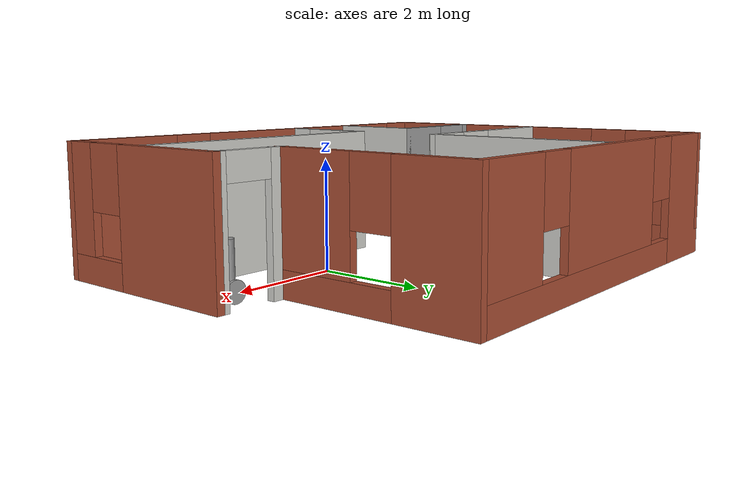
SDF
<?xml version='1.0'?>
<sdf version='1.7'>
  <model name='PROJECT1'>
    <model name='PROJECT1'>
      <model name='balancerobot'>
        <link name='link_0'>
          <inertial>
            <mass>1</mass>
            <inertia>
              <ixx>0.145833</ixx>
              <ixy>0</ixy>
              <ixz>0</ixz>
              <iyy>0.145833</iyy>
              <iyz>0</iyz>
              <izz>0.125</izz>
            </inertia>
            <pose>0 0 0 0 -0 0</pose>
          </inertial>
          <pose>0.020222 -0.037562 -0.115563 0 -0 0</pose>
          <gravity>1</gravity>
          <self_collide>0</self_collide>
          <kinematic>0</kinematic>
          <enable_wind>0</enable_wind>
          <visual name='visual'>
            <pose>0 0 0 0 -0 0</pose>
            <geometry>
              <cylinder>
                <radius>0.2</radius>
                <length>0.01</length>
              </cylinder>
            </geometry>
            <material>
              <lighting>1</lighting>
              <script>
                <uri>file://media/materials/scripts/gazebo.material</uri>
                <name>Gazebo/Grey</name>
              </script>
              <shader type='vertex'>
                <normal_map>__default__</normal_map>
              </shader>
              <ambient>0.3 0.3 0.3 1</ambient>
              <diffuse>0.7 0.7 0.7 1</diffuse>
              <specular>0.01 0.01 0.01 1</specular>
              <emissive>0 0 0 1</emissive>
            </material>
            <transparency>0</transparency>
            <cast_shadows>1</cast_shadows>
          </visual>
          <collision name='collision'>
            <laser_retro>0</laser_retro>
            <max_contacts>10</max_contacts>
            <pose>0 0 0 0 -0 0</pose>
            <geometry>
              <cylinder>
                <radius>0.2</radius>
                <length>0.01</length>
              </cylinder>
            </geometry>
            <surface>
              <friction>
                <ode>
                  <mu>1</mu>
                  <mu2>1</mu2>
                  <fdir1>0 0 0</fdir1>
                  <slip1>0</slip1>
                  <slip2>0</slip2>
                </ode>
                <torsional>
                  <coefficient>1</coefficient>
                  <patch_radius>0</patch_radius>
                  <surface_radius>0</surface_radius>
                  <use_patch_radius>1</use_patch_radius>
                  <ode>
                    <slip>0</slip>
                  </ode>
                </torsional>
              </friction>
              <bounce>
                <restitution_coefficient>0</restitution_coefficient>
                <threshold>1e+06</threshold>
              </bounce>
              <contact>
                <collide_without_contact>0</collide_without_contact>
                <collide_without_contact_bitmask>1</collide_without_contact_bitmask>
                <collide_bitmask>1</collide_bitmask>
                <ode>
                  <soft_cfm>0</soft_cfm>
                  <soft_erp>0.2</soft_erp>
                  <kp>1e+13</kp>
                  <kd>1</kd>
                  <max_vel>0.01</max_vel>
                  <min_depth>0</min_depth>
                </ode>
                <bullet>
                  <split_impulse>1</split_impulse>
                  <split_impulse_penetration_threshold>-0.01</split_impulse_penetration_threshold>
                  <soft_cfm>0</soft_cfm>
                  <soft_erp>0.2</soft_erp>
                  <kp>1e+13</kp>
                  <kd>1</kd>
                </bullet>
              </contact>
            </surface>
          </collision>
        </link>
        <link name='link_1'>
          <inertial>
            <mass>1</mass>
            <inertia>
              <ixx>0.145833</ixx>
              <ixy>0</ixy>
              <ixz>0</ixz>
              <iyy>0.145833</iyy>
              <iyz>0</iyz>
              <izz>0.125</izz>
            </inertia>
            <pose>0 0 0 0 -0 0</pose>
          </inertial>
          <pose>0.020222 -0.187562 -0.165183 1.5707 -0 0</pose>
          <gravity>1</gravity>
          <self_collide>0</self_collide>
          <kinematic>0</kinematic>
          <enable_wind>0</enable_wind>
          <visual name='visual'>
            <pose>0 0 0 0 -0 0</pose>
            <geometry>
              <cylinder>
                <radius>0.045</radius>
                <length>0.11</length>
              </cylinder>
            </geometry>
            <material>
              <lighting>1</lighting>
              <script>
                <uri>file://media/materials/scripts/gazebo.material</uri>
                <name>Gazebo/Grey</name>
              </script>
              <shader type='vertex'>
                <normal_map>__default__</normal_map>
              </shader>
              <ambient>0.3 0.3 0.3 1</ambient>
              <diffuse>0.7 0.7 0.7 1</diffuse>
              <specular>0.01 0.01 0.01 1</specular>
              <emissive>0 0 0 1</emissive>
            </material>
            <transparency>0</transparency>
            <cast_shadows>1</cast_shadows>
          </visual>
          <collision name='collision'>
            <laser_retro>0</laser_retro>
            <max_contacts>10</max_contacts>
            <pose>0 0 0 0 -0 0</pose>
            <geometry>
              <cylinder>
                <radius>0.045</radius>
                <length>0.11</length>
              </cylinder>
            </geometry>
            <surface>
              <friction>
                <ode>
                  <mu>1</mu>
                  <mu2>1</mu2>
                  <fdir1>0 0 0</fdir1>
                  <slip1>0</slip1>
                  <slip2>0</slip2>
                </ode>
                <torsional>
                  <coefficient>1</coefficient>
                  <patch_radius>0</patch_radius>
                  <surface_radius>0</surface_radius>
                  <use_patch_radius>1</use_patch_radius>
                  <ode>
                    <slip>0</slip>
                  </ode>
                </torsional>
              </friction>
              <bounce>
                <restitution_coefficient>0</restitution_coefficient>
                <threshold>1e+06</threshold>
              </bounce>
              <contact>
                <collide_without_contact>0</collide_without_contact>
                <collide_without_contact_bitmask>1</collide_without_contact_bitmask>
                <collide_bitmask>1</collide_bitmask>
                <ode>
                  <soft_cfm>0</soft_cfm>
                  <soft_erp>0.2</soft_erp>
                  <kp>1e+13</kp>
                  <kd>1</kd>
                  <max_vel>0.01</max_vel>
                  <min_depth>0</min_depth>
                </ode>
                <bullet>
                  <split_impulse>1</split_impulse>
                  <split_impulse_penetration_threshold>-0.01</split_impulse_penetration_threshold>
                  <soft_cfm>0</soft_cfm>
                  <soft_erp>0.2</soft_erp>
                  <kp>1e+13</kp>
                  <kd>1</kd>
                </bullet>
              </contact>
            </surface>
          </collision>
        </link>
        <link name='link_1_clone'>
          <inertial>
            <mass>1</mass>
            <inertia>
              <ixx>0.145833</ixx>
              <ixy>0</ixy>
              <ixz>0</ixz>
              <iyy>0.145833</iyy>
              <iyz>0</iyz>
              <izz>0.125</izz>
            </inertia>
            <pose>0 0 0 0 -0 0</pose>
          </inertial>
          <pose>0.020222 0.112438 -0.165563 1.5707 -0 0</pose>
          <gravity>1</gravity>
          <self_collide>0</self_collide>
          <kinematic>0</kinematic>
          <enable_wind>0</enable_wind>
          <visual name='visual'>
            <pose>0 0 0 0 -0 0</pose>
            <geometry>
              <cylinder>
                <radius>0.045</radius>
                <length>0.11</length>
              </cylinder>
            </geometry>
            <material>
              <lighting>1</lighting>
              <script>
                <uri>file://media/materials/scripts/gazebo.material</uri>
                <name>Gazebo/Grey</name>
              </script>
              <shader type='vertex'>
                <normal_map>__default__</normal_map>
              </shader>
              <ambient>0.3 0.3 0.3 1</ambient>
              <diffuse>0.7 0.7 0.7 1</diffuse>
              <specular>0.01 0.01 0.01 1</specular>
              <emissive>0 0 0 1</emissive>
            </material>
            <transparency>0</transparency>
            <cast_shadows>1</cast_shadows>
          </visual>
          <collision name='collision'>
            <laser_retro>0</laser_retro>
            <max_contacts>10</max_contacts>
            <pose>0 0 0 0 -0 0</pose>
            <geometry>
              <cylinder>
                <radius>0.045</radius>
                <length>0.11</length>
              </cylinder>
            </geometry>
            <surface>
              <friction>
                <ode>
                  <mu>1</mu>
                  <mu2>1</mu2>
                  <fdir1>0 0 0</fdir1>
                  <slip1>0</slip1>
                  <slip2>0</slip2>
                </ode>
                <torsional>
                  <coefficient>1</coefficient>
                  <patch_radius>0</patch_radius>
                  <surface_radius>0</surface_radius>
                  <use_patch_radius>1</use_patch_radius>
                  <ode>
                    <slip>0</slip>
                  </ode>
                </torsional>
              </friction>
              <bounce>
                <restitution_coefficient>0</restitution_coefficient>
                <threshold>1e+06</threshold>
              </bounce>
              <contact>
                <collide_without_contact>0</collide_without_contact>
                <collide_without_contact_bitmask>1</collide_without_contact_bitmask>
                <collide_bitmask>1</collide_bitmask>
                <ode>
                  <soft_cfm>0</soft_cfm>
                  <soft_erp>0.2</soft_erp>
                  <kp>1e+13</kp>
                  <kd>1</kd>
                  <max_vel>0.01</max_vel>
                  <min_depth>0</min_depth>
                </ode>
                <bullet>
                  <split_impulse>1</split_impulse>
                  <split_impulse_penetration_threshold>-0.01</split_impulse_penetration_threshold>
                  <soft_cfm>0</soft_cfm>
                  <soft_erp>0.2</soft_erp>
                  <kp>1e+13</kp>
                  <kd>1</kd>
                </bullet>
              </contact>
            </surface>
          </collision>
        </link>
        <link name='link_2'>
          <inertial>
            <mass>1</mass>
            <inertia>
              <ixx>0.145833</ixx>
              <ixy>0</ixy>
              <ixz>0</ixz>
              <iyy>0.145833</iyy>
              <iyz>0</iyz>
              <izz>0.125</izz>
            </inertia>
            <pose>0 0 0 0 -0 0</pose>
          </inertial>
          <pose>0.020222 -0.267562 -0.165175 1.5707 -0 0</pose>
          <gravity>1</gravity>
          <self_collide>0</self_collide>
          <kinematic>0</kinematic>
          <enable_wind>0</enable_wind>
          <visual name='visual'>
            <pose>0 0 0 0 -0 0</pose>
            <geometry>
              <cylinder>
                <radius>0.2</radius>
                <length>0.05</length>
              </cylinder>
            </geometry>
            <material>
              <lighting>1</lighting>
              <script>
                <uri>file://media/materials/scripts/gazebo.material</uri>
                <name>Gazebo/Grey</name>
              </script>
              <shader type='vertex'>
                <normal_map>__default__</normal_map>
              </shader>
              <ambient>0.3 0.3 0.3 1</ambient>
              <diffuse>0.7 0.7 0.7 1</diffuse>
              <specular>0.01 0.01 0.01 1</specular>
              <emissive>0 0 0 1</emissive>
            </material>
            <transparency>0</transparency>
            <cast_shadows>1</cast_shadows>
          </visual>
          <collision name='collision'>
            <laser_retro>0</laser_retro>
            <max_contacts>10</max_contacts>
            <pose>0 0 0 0 -0 0</pose>
            <geometry>
              <cylinder>
                <radius>0.2</radius>
                <length>0.05</length>
              </cylinder>
            </geometry>
            <surface>
              <friction>
                <ode>
                  <mu>1</mu>
                  <mu2>1</mu2>
                  <fdir1>0 0 0</fdir1>
                  <slip1>0</slip1>
                  <slip2>0</slip2>
                </ode>
                <torsional>
                  <coefficient>1</coefficient>
                  <patch_radius>0</patch_radius>
                  <surface_radius>0</surface_radius>
                  <use_patch_radius>1</use_patch_radius>
                  <ode>
                    <slip>0</slip>
                  </ode>
                </torsional>
              </friction>
              <bounce>
                <restitution_coefficient>0</restitution_coefficient>
                <threshold>1e+06</threshold>
              </bounce>
              <contact>
                <collide_without_contact>0</collide_without_contact>
                <collide_without_contact_bitmask>1</collide_without_contact_bitmask>
                <collide_bitmask>1</collide_bitmask>
                <ode>
                  <soft_cfm>0</soft_cfm>
                  <soft_erp>0.2</soft_erp>
                  <kp>1e+13</kp>
                  <kd>1</kd>
                  <max_vel>0.01</max_vel>
                  <min_depth>0</min_depth>
                </ode>
                <bullet>
                  <split_impulse>1</split_impulse>
                  <split_impulse_penetration_threshold>-0.01</split_impulse_penetration_threshold>
                  <soft_cfm>0</soft_cfm>
                  <soft_erp>0.2</soft_erp>
                  <kp>1e+13</kp>
                  <kd>1</kd>
                </bullet>
              </contact>
            </surface>
          </collision>
        </link>
        <link name='link_2_clone'>
          <inertial>
            <mass>1</mass>
            <inertia>
              <ixx>0.145833</ixx>
              <ixy>0</ixy>
              <ixz>0</ixz>
              <iyy>0.145833</iyy>
              <iyz>0</iyz>
              <izz>0.125</izz>
            </inertia>
            <pose>0 0 0 0 -0 0</pose>
          </inertial>
          <pose>0.020222 0.192462 -0.165563 1.5707 -0 0</pose>
          <gravity>1</gravity>
          <self_collide>0</self_collide>
          <kinematic>0</kinematic>
          <enable_wind>0</enable_wind>
          <visual name='visual'>
            <pose>0 0 0 0 -0 0</pose>
            <geometry>
              <cylinder>
                <radius>0.2</radius>
                <length>0.05</length>
              </cylinder>
            </geometry>
            <material>
              <lighting>1</lighting>
              <script>
                <uri>file://media/materials/scripts/gazebo.material</uri>
                <name>Gazebo/Grey</name>
              </script>
              <shader type='vertex'>
                <normal_map>__default__</normal_map>
              </shader>
              <ambient>0.3 0.3 0.3 1</ambient>
              <diffuse>0.7 0.7 0.7 1</diffuse>
              <specular>0.01 0.01 0.01 1</specular>
              <emissive>0 0 0 1</emissive>
            </material>
            <transparency>0</transparency>
            <cast_shadows>1</cast_shadows>
          </visual>
          <collision name='collision'>
            <laser_retro>0</laser_retro>
            <max_contacts>10</max_contacts>
            <pose>0 0 0 0 -0 0</pose>
            <geometry>
              <cylinder>
                <radius>0.2</radius>
                <length>0.05</length>
              </cylinder>
            </geometry>
            <surface>
              <friction>
                <ode>
                  <mu>1</mu>
                  <mu2>1</mu2>
                  <fdir1>0 0 0</fdir1>
                  <slip1>0</slip1>
                  <slip2>0</slip2>
                </ode>
                <torsional>
                  <coefficient>1</coefficient>
                  <patch_radius>0</patch_radius>
                  <surface_radius>0</surface_radius>
                  <use_patch_radius>1</use_patch_radius>
                  <ode>
                    <slip>0</slip>
                  </ode>
                </torsional>
              </friction>
              <bounce>
                <restitution_coefficient>0</restitution_coefficient>
                <threshold>1e+06</threshold>
              </bounce>
              <contact>
                <collide_without_contact>0</collide_without_contact>
                <collide_without_contact_bitmask>1</collide_without_contact_bitmask>
                <collide_bitmask>1</collide_bitmask>
                <ode>
                  <soft_cfm>0</soft_cfm>
                  <soft_erp>0.2</soft_erp>
                  <kp>1e+13</kp>
                  <kd>1</kd>
                  <max_vel>0.01</max_vel>
                  <min_depth>0</min_depth>
                </ode>
                <bullet>
                  <split_impulse>1</split_impulse>
                  <split_impulse_penetration_threshold>-0.01</split_impulse_penetration_threshold>
                  <soft_cfm>0</soft_cfm>
                  <soft_erp>0.2</soft_erp>
                  <kp>1e+13</kp>
                  <kd>1</kd>
                </bullet>
              </contact>
            </surface>
          </collision>
        </link>
        <link name='link_3'>
          <inertial>
            <mass>1</mass>
            <inertia>
              <ixx>0.145833</ixx>
              <ixy>0</ixy>
              <ixz>0</ixz>
              <iyy>0.145833</iyy>
              <iyz>0</iyz>
              <izz>0.125</izz>
            </inertia>
            <pose>0 0 0 0 -0 0</pose>
          </inertial>
          <pose>0.020222 -0.037562 0.277437 0 -0 0</pose>
          <gravity>1</gravity>
          <self_collide>0</self_collide>
          <kinematic>0</kinematic>
          <enable_wind>0</enable_wind>
          <visual name='visual'>
            <pose>0 0 0 0 -0 0</pose>
            <geometry>
              <cylinder>
                <radius>0.15</radius>
                <length>0.8</length>
              </cylinder>
            </geometry>
            <material>
              <lighting>1</lighting>
              <script>
                <uri>file://media/materials/scripts/gazebo.material</uri>
                <name>Gazebo/Grey</name>
              </script>
              <shader type='vertex'>
                <normal_map>__default__</normal_map>
              </shader>
              <ambient>0.3 0.3 0.3 1</ambient>
              <diffuse>0.7 0.7 0.7 1</diffuse>
              <specular>0.01 0.01 0.01 1</specular>
              <emissive>0 0 0 1</emissive>
            </material>
            <transparency>0</transparency>
            <cast_shadows>1</cast_shadows>
          </visual>
          <collision name='collision'>
            <laser_retro>0</laser_retro>
            <max_contacts>10</max_contacts>
            <pose>0 0 0 0 -0 0</pose>
            <geometry>
              <cylinder>
                <radius>0.15</radius>
                <length>0.8</length>
              </cylinder>
            </geometry>
            <surface>
              <friction>
                <ode>
                  <mu>1</mu>
                  <mu2>1</mu2>
                  <fdir1>0 0 0</fdir1>
                  <slip1>0</slip1>
                  <slip2>0</slip2>
                </ode>
                <torsional>
                  <coefficient>1</coefficient>
                  <patch_radius>0</patch_radius>
                  <surface_radius>0</surface_radius>
                  <use_patch_radius>1</use_patch_radius>
                  <ode>
                    <slip>0</slip>
                  </ode>
                </torsional>
              </friction>
              <bounce>
                <restitution_coefficient>0</restitution_coefficient>
                <threshold>1e+06</threshold>
              </bounce>
              <contact>
                <collide_without_contact>0</collide_without_contact>
                <collide_without_contact_bitmask>1</collide_without_contact_bitmask>
                <collide_bitmask>1</collide_bitmask>
                <ode>
                  <soft_cfm>0</soft_cfm>
                  <soft_erp>0.2</soft_erp>
                  <kp>1e+13</kp>
                  <kd>1</kd>
                  <max_vel>0.01</max_vel>
                  <min_depth>0</min_depth>
                </ode>
                <bullet>
                  <split_impulse>1</split_impulse>
                  <split_impulse_penetration_threshold>-0.01</split_impulse_penetration_threshold>
                  <soft_cfm>0</soft_cfm>
                  <soft_erp>0.2</soft_erp>
                  <kp>1e+13</kp>
                  <kd>1</kd>
                </bullet>
              </contact>
            </surface>
          </collision>
        </link>
        <joint name='link_0_JOINT_2' type='fixed'>
          <parent>link_0</parent>
          <child>link_1</child>
          <pose>0 0 0 0 -0 0</pose>
          <physics>
            <ode>
              <limit>
                <cfm>0</cfm>
                <erp>0.2</erp>
              </limit>
              <suspension>
                <cfm>0</cfm>
                <erp>0.2</erp>
              </suspension>
            </ode>
          </physics>
        </joint>
        <joint name='link_0_JOINT_3' type='fixed'>
          <parent>link_0</parent>
          <child>link_1_clone</child>
          <pose>0 0 0 0 -0 0</pose>
          <physics>
            <ode>
              <limit>
                <cfm>0</cfm>
                <erp>0.2</erp>
              </limit>
              <suspension>
                <cfm>0</cfm>
                <erp>0.2</erp>
              </suspension>
            </ode>
          </physics>
        </joint>
        <joint name='link_0_JOINT_6' type='fixed'>
          <parent>link_0</parent>
          <child>link_3</child>
          <pose>0 0 0 0 -0 0</pose>
          <physics>
            <ode>
              <limit>
                <cfm>0</cfm>
                <erp>0.2</erp>
              </limit>
              <suspension>
                <cfm>0</cfm>
                <erp>0.2</erp>
              </suspension>
            </ode>
          </physics>
        </joint>
        <joint name='link_1_JOINT_4' type='revolute'>
          <parent>link_1</parent>
          <child>link_2</child>
          <pose>-0 0 -0.02 0 -0 0</pose>
          <axis>
            <xyz>0 0 1</xyz>
            <limit>
              <lower>-1.79769e+308</lower>
              <upper>1.79769e+308</upper>
              <effort>-1</effort>
              <velocity>-1</velocity>
            </limit>
            <dynamics>
              <spring_reference>0</spring_reference>
              <spring_stiffness>0</spring_stiffness>
              <damping>0</damping>
            </dynamics>
          </axis>
          <physics>
            <ode>
              <limit>
                <cfm>0</cfm>
                <erp>0.2</erp>
              </limit>
              <suspension>
                <cfm>0</cfm>
                <erp>0.2</erp>
              </suspension>
            </ode>
          </physics>
        </joint>
        <joint name='link_1_clone_JOINT_5' type='revolute'>
          <parent>link_1_clone</parent>
          <child>link_2_clone</child>
          <pose>0 0 0 0 -0 0</pose>
          <axis>
            <xyz>1 0 0</xyz>
            <limit>
              <lower>-1.79769e+308</lower>
              <upper>1.79769e+308</upper>
              <effort>-1</effort>
              <velocity>-1</velocity>
            </limit>
            <dynamics>
              <spring_reference>0</spring_reference>
              <spring_stiffness>0</spring_stiffness>
              <damping>0</damping>
            </dynamics>
          </axis>
          <physics>
            <ode>
              <limit>
                <cfm>0</cfm>
                <erp>0.2</erp>
              </limit>
              <suspension>
                <cfm>0</cfm>
                <erp>0.2</erp>
              </suspension>
            </ode>
          </physics>
        </joint>
        <static>0</static>
        <allow_auto_disable>1</allow_auto_disable>
        <pose>2.02516 -0.247813 0.181894 0 -0 0</pose>
      </model>
      <model name='project1'>
        <pose>-2.02515 0.247813 -0.181894 0 -0 0</pose>
        <link name='Wall_0'>
          <pose>-0.675 3.85 0 0 -0 0</pose>
          <visual name='Wall_0_Visual_0'>
            <pose>-3.28349 0 1.25 0 -0 0</pose>
            <geometry>
              <box>
                <size>1.58303 0.15 2.5</size>
              </box>
            </geometry>
            <material>
              <script>
                <uri>file://media/materials/scripts/gazebo.material</uri>
                <name>Gazebo/Bricks</name>
              </script>
              <ambient>1 1 1 1</ambient>
            </material>
            <meta>
              <layer>0</layer>
            </meta>
          </visual>
          <collision name='Wall_0_Collision_0'>
            <geometry>
              <box>
                <size>1.58303 0.15 2.5</size>
              </box>
            </geometry>
            <pose>-3.28349 0 1.25 0 -0 0</pose>
          </collision>
          <visual name='Wall_0_Visual_1'>
            <pose>0.791513 0 0.25 0 -0 0</pose>
            <geometry>
              <box>
                <size>6.56697 0.15 0.5</size>
              </box>
            </geometry>
            <material>
              <script>
                <uri>file://media/materials/scripts/gazebo.material</uri>
                <name>Gazebo/Bricks</name>
              </script>
              <ambient>1 1 1 1</ambient>
            </material>
            <meta>
              <layer>0</layer>
            </meta>
          </visual>
          <collision name='Wall_0_Collision_1'>
            <geometry>
              <box>
                <size>6.56697 0.15 0.5</size>
              </box>
            </geometry>
            <pose>0.791513 0 0.25 0 -0 0</pose>
          </collision>
          <visual name='Wall_0_Visual_2'>
            <pose>-0.042824 0 1.5 0 -0 0</pose>
            <geometry>
              <box>
                <size>3.2983 0.15 2</size>
              </box>
            </geometry>
            <material>
              <script>
                <uri>file://media/materials/scripts/gazebo.material</uri>
                <name>Gazebo/Bricks</name>
              </script>
              <ambient>1 1 1 1</ambient>
            </material>
            <meta>
              <layer>0</layer>
            </meta>
          </visual>
          <collision name='Wall_0_Collision_2'>
            <geometry>
              <box>
                <size>3.2983 0.15 2</size>
              </box>
            </geometry>
            <pose>-0.042824 0 1.5 0 -0 0</pose>
          </collision>
          <visual name='Wall_0_Visual_3'>
            <pose>3.24066 0 1.5 0 -0 0</pose>
            <geometry>
              <box>
                <size>1.66867 0.15 2</size>
              </box>
            </geometry>
            <material>
              <script>
                <uri>file://media/materials/scripts/gazebo.material</uri>
                <name>Gazebo/Bricks</name>
              </script>
              <ambient>1 1 1 1</ambient>
            </material>
            <meta>
              <layer>0</layer>
            </meta>
          </visual>
          <collision name='Wall_0_Collision_3'>
            <geometry>
              <box>
                <size>1.66867 0.15 2</size>
              </box>
            </geometry>
            <pose>3.24066 0 1.5 0 -0 0</pose>
          </collision>
          <visual name='Wall_0_Visual_4'>
            <pose>-2.09197 0 1.9 0 -0 0</pose>
            <geometry>
              <box>
                <size>0.8 0.15 1.2</size>
              </box>
            </geometry>
            <material>
              <script>
                <uri>file://media/materials/scripts/gazebo.material</uri>
                <name>Gazebo/Bricks</name>
              </script>
              <ambient>1 1 1 1</ambient>
            </material>
            <meta>
              <layer>0</layer>
            </meta>
          </visual>
          <collision name='Wall_0_Collision_4'>
            <geometry>
              <box>
                <size>0.8 0.15 1.2</size>
              </box>
            </geometry>
            <pose>-2.09197 0 1.9 0 -0 0</pose>
          </collision>
          <visual name='Wall_0_Visual_5'>
            <pose>2.00633 0 1.9 0 -0 0</pose>
            <geometry>
              <box>
                <size>0.8 0.15 1.2</size>
              </box>
            </geometry>
            <material>
              <script>
                <uri>file://media/materials/scripts/gazebo.material</uri>
                <name>Gazebo/Bricks</name>
              </script>
              <ambient>1 1 1 1</ambient>
            </material>
            <meta>
              <layer>0</layer>
            </meta>
          </visual>
          <collision name='Wall_0_Collision_5'>
            <geometry>
              <box>
                <size>0.8 0.15 1.2</size>
              </box>
            </geometry>
            <pose>2.00633 0 1.9 0 -0 0</pose>
          </collision>
        </link>
        <link name='Wall_11'>
          <collision name='Wall_11_Collision'>
            <geometry>
              <box>
                <size>4 0.15 2.5</size>
              </box>
            </geometry>
            <pose>0 0 1.25 0 -0 0</pose>
          </collision>
          <visual name='Wall_11_Visual'>
            <pose>0 0 1.25 0 -0 0</pose>
            <geometry>
              <box>
                <size>4 0.15 2.5</size>
              </box>
            </geometry>
            <material>
              <script>
                <uri>file://media/materials/scripts/gazebo.material</uri>
                <name>Gazebo/CeilingTiled</name>
              </script>
              <ambient>1 1 1 1</ambient>
            </material>
            <meta>
              <layer>0</layer>
            </meta>
          </visual>
          <pose>-0.846184 1.90708 0 0 -0 -1.5707</pose>
        </link>
        <link name='Wall_12'>
          <pose>-2.7605 -0.018 0 0 -0 3.14159</pose>
          <visual name='Wall_12_Visual_0'>
            <pose>-1.48873 0 1.25 0 -0 0</pose>
            <geometry>
              <box>
                <size>1.00155 0.15 2.5</size>
              </box>
            </geometry>
            <material>
              <script>
                <uri>file://media/materials/scripts/gazebo.material</uri>
                <name>Gazebo/CeilingTiled</name>
              </script>
              <ambient>1 1 1 1</ambient>
            </material>
            <meta>
              <layer>0</layer>
            </meta>
          </visual>
          <collision name='Wall_12_Collision_0'>
            <geometry>
              <box>
                <size>1.00155 0.15 2.5</size>
              </box>
            </geometry>
            <pose>-1.48873 0 1.25 0 -0 0</pose>
          </collision>
          <visual name='Wall_12_Visual_1'>
            <pose>0.950775 0 1.25 0 -0 0</pose>
            <geometry>
              <box>
                <size>2.07745 0.15 2.5</size>
              </box>
            </geometry>
            <material>
              <script>
                <uri>file://media/materials/scripts/gazebo.material</uri>
                <name>Gazebo/CeilingTiled</name>
              </script>
              <ambient>1 1 1 1</ambient>
            </material>
            <meta>
              <layer>0</layer>
            </meta>
          </visual>
          <collision name='Wall_12_Collision_1'>
            <geometry>
              <box>
                <size>2.07745 0.15 2.5</size>
              </box>
            </geometry>
            <pose>0.950775 0 1.25 0 -0 0</pose>
          </collision>
          <visual name='Wall_12_Visual_2'>
            <pose>-0.537951 0 2.25 0 -0 0</pose>
            <geometry>
              <box>
                <size>0.9 0.15 0.5</size>
              </box>
            </geometry>
            <material>
              <script>
                <uri>file://media/materials/scripts/gazebo.material</uri>
                <name>Gazebo/CeilingTiled</name>
              </script>
              <ambient>1 1 1 1</ambient>
            </material>
            <meta>
              <layer>0</layer>
            </meta>
          </visual>
          <collision name='Wall_12_Collision_2'>
            <geometry>
              <box>
                <size>0.9 0.15 0.5</size>
              </box>
            </geometry>
            <pose>-0.537951 0 2.25 0 -0 0</pose>
          </collision>
        </link>
        <link name='Wall_14'>
          <pose>-3.48233 -1.89942 0 0 -0 0</pose>
          <visual name='Wall_14_Visual_0'>
            <pose>-1.09723 0 1.25 0 -0 0</pose>
            <geometry>
              <box>
                <size>0.305529 0.15 2.5</size>
              </box>
            </geometry>
            <material>
              <script>
                <uri>file://media/materials/scripts/gazebo.material</uri>
                <name>Gazebo/Grey</name>
              </script>
              <ambient>1 1 1 1</ambient>
            </material>
            <meta>
              <layer>0</layer>
            </meta>
          </visual>
          <collision name='Wall_14_Collision_0'>
            <geometry>
              <box>
                <size>0.305529 0.15 2.5</size>
              </box>
            </geometry>
            <pose>-1.09723 0 1.25 0 -0 0</pose>
          </collision>
          <visual name='Wall_14_Visual_1'>
            <pose>0.602765 0 1.25 0 -0 0</pose>
            <geometry>
              <box>
                <size>1.29447 0.15 2.5</size>
              </box>
            </geometry>
            <material>
              <script>
                <uri>file://media/materials/scripts/gazebo.material</uri>
                <name>Gazebo/Grey</name>
              </script>
              <ambient>1 1 1 1</ambient>
            </material>
            <meta>
              <layer>0</layer>
            </meta>
          </visual>
          <collision name='Wall_14_Collision_1'>
            <geometry>
              <box>
                <size>1.29447 0.15 2.5</size>
              </box>
            </geometry>
            <pose>0.602765 0 1.25 0 -0 0</pose>
          </collision>
          <visual name='Wall_14_Visual_2'>
            <pose>-0.494471 0 2.25 0 -0 0</pose>
            <geometry>
              <box>
                <size>0.9 0.15 0.5</size>
              </box>
            </geometry>
            <material>
              <script>
                <uri>file://media/materials/scripts/gazebo.material</uri>
                <name>Gazebo/Grey</name>
              </script>
              <ambient>1 1 1 1</ambient>
            </material>
            <meta>
              <layer>0</layer>
            </meta>
          </visual>
          <collision name='Wall_14_Collision_2'>
            <geometry>
              <box>
                <size>0.9 0.15 0.5</size>
              </box>
            </geometry>
            <pose>-0.494471 0 2.25 0 -0 0</pose>
          </collision>
        </link>
        <link name='Wall_15'>
          <collision name='Wall_15_Collision'>
            <geometry>
              <box>
                <size>2 0.15 2.5</size>
              </box>
            </geometry>
            <pose>0 0 1.25 0 -0 0</pose>
          </collision>
          <visual name='Wall_15_Visual'>
            <pose>0 0 1.25 0 -0 0</pose>
            <geometry>
              <box>
                <size>2 0.15 2.5</size>
              </box>
            </geometry>
            <material>
              <script>
                <uri>file://media/materials/scripts/gazebo.material</uri>
                <name>Gazebo/CeilingTiled</name>
              </script>
              <ambient>1 1 1 1</ambient>
            </material>
            <meta>
              <layer>0</layer>
            </meta>
          </visual>
          <pose>-2.30733 -2.82442 0 0 -0 -1.5708</pose>
        </link>
        <link name='Wall_18'>
          <collision name='Wall_18_Collision'>
            <geometry>
              <box>
                <size>5.5 0.15 2.5</size>
              </box>
            </geometry>
            <pose>0 0 1.25 0 -0 0</pose>
          </collision>
          <visual name='Wall_18_Visual'>
            <pose>0 0 1.25 0 -0 0</pose>
            <geometry>
              <box>
                <size>5.5 0.15 2.5</size>
              </box>
            </geometry>
            <material>
              <script>
                <uri>file://media/materials/scripts/gazebo.material</uri>
                <name>Gazebo/CeilingTiled</name>
              </script>
              <ambient>1 1 1 1</ambient>
            </material>
            <meta>
              <layer>0</layer>
            </meta>
          </visual>
          <pose>1.95311 -1.89942 0 0 -0 3.14159</pose>
        </link>
        <link name='Wall_19'>
          <pose>-0.721888 -2.82442 0 0 -0 -1.5708</pose>
          <visual name='Wall_19_Visual_0'>
            <pose>-0.71113 0 1.25 0 -0 0</pose>
            <geometry>
              <box>
                <size>0.577741 0.15 2.5</size>
              </box>
            </geometry>
            <material>
              <script>
                <uri>file://media/materials/scripts/gazebo.material</uri>
                <name>Gazebo/CeilingTiled</name>
              </script>
              <ambient>1 1 1 1</ambient>
            </material>
            <meta>
              <layer>0</layer>
            </meta>
          </visual>
          <collision name='Wall_19_Collision_0'>
            <geometry>
              <box>
                <size>0.577741 0.15 2.5</size>
              </box>
            </geometry>
            <pose>-0.71113 0 1.25 0 -0 0</pose>
          </collision>
          <visual name='Wall_19_Visual_1'>
            <pose>0.73887 0 1.25 0 -0 0</pose>
            <geometry>
              <box>
                <size>0.522259 0.15 2.5</size>
              </box>
            </geometry>
            <material>
              <script>
                <uri>file://media/materials/scripts/gazebo.material</uri>
                <name>Gazebo/CeilingTiled</name>
              </script>
              <ambient>1 1 1 1</ambient>
            </material>
            <meta>
              <layer>0</layer>
            </meta>
          </visual>
          <collision name='Wall_19_Collision_1'>
            <geometry>
              <box>
                <size>0.522259 0.15 2.5</size>
              </box>
            </geometry>
            <pose>0.73887 0 1.25 0 -0 0</pose>
          </collision>
          <visual name='Wall_19_Visual_2'>
            <pose>0.027741 0 2.25 0 -0 0</pose>
            <geometry>
              <box>
                <size>0.9 0.15 0.5</size>
              </box>
            </geometry>
            <material>
              <script>
                <uri>file://media/materials/scripts/gazebo.material</uri>
                <name>Gazebo/CeilingTiled</name>
              </script>
              <ambient>1 1 1 1</ambient>
            </material>
            <meta>
              <layer>0</layer>
            </meta>
          </visual>
          <collision name='Wall_19_Collision_2'>
            <geometry>
              <box>
                <size>0.9 0.15 0.5</size>
              </box>
            </geometry>
            <pose>0.027741 0 2.25 0 -0 0</pose>
          </collision>
        </link>
        <link name='Wall_2'>
          <pose>3.325 1.925 0 0 -0 -1.5708</pose>
          <visual name='Wall_2_Visual_0'>
            <pose>-1.21596 0 1.25 0 -0 0</pose>
            <geometry>
              <box>
                <size>1.56809 0.15 2.5</size>
              </box>
            </geometry>
            <material>
              <script>
                <uri>file://media/materials/scripts/gazebo.material</uri>
                <name>Gazebo/Bricks</name>
              </script>
              <ambient>1 1 1 1</ambient>
            </material>
            <meta>
              <layer>0</layer>
            </meta>
          </visual>
          <collision name='Wall_2_Collision_0'>
            <geometry>
              <box>
                <size>1.56809 0.15 2.5</size>
              </box>
            </geometry>
            <pose>-1.21596 0 1.25 0 -0 0</pose>
          </collision>
          <visual name='Wall_2_Visual_1'>
            <pose>0.784043 0 0.25 0 -0 0</pose>
            <geometry>
              <box>
                <size>2.43191 0.15 0.5</size>
              </box>
            </geometry>
            <material>
              <script>
                <uri>file://media/materials/scripts/gazebo.material</uri>
                <name>Gazebo/Bricks</name>
              </script>
              <ambient>1 1 1 1</ambient>
            </material>
            <meta>
              <layer>0</layer>
            </meta>
          </visual>
          <collision name='Wall_2_Collision_1'>
            <geometry>
              <box>
                <size>2.43191 0.15 0.5</size>
              </box>
            </geometry>
            <pose>0.784043 0 0.25 0 -0 0</pose>
          </collision>
          <visual name='Wall_2_Visual_2'>
            <pose>1.18404 0 1.5 0 -0 0</pose>
            <geometry>
              <box>
                <size>1.63191 0.15 2</size>
              </box>
            </geometry>
            <material>
              <script>
                <uri>file://media/materials/scripts/gazebo.material</uri>
                <name>Gazebo/Bricks</name>
              </script>
              <ambient>1 1 1 1</ambient>
            </material>
            <meta>
              <layer>0</layer>
            </meta>
          </visual>
          <collision name='Wall_2_Collision_2'>
            <geometry>
              <box>
                <size>1.63191 0.15 2</size>
              </box>
            </geometry>
            <pose>1.18404 0 1.5 0 -0 0</pose>
          </collision>
          <visual name='Wall_2_Visual_3'>
            <pose>-0.031914 0 1.9 0 -0 0</pose>
            <geometry>
              <box>
                <size>0.8 0.15 1.2</size>
              </box>
            </geometry>
            <material>
              <script>
                <uri>file://media/materials/scripts/gazebo.material</uri>
                <name>Gazebo/Bricks</name>
              </script>
              <ambient>1 1 1 1</ambient>
            </material>
            <meta>
              <layer>0</layer>
            </meta>
          </visual>
          <collision name='Wall_2_Collision_3'>
            <geometry>
              <box>
                <size>0.8 0.15 1.2</size>
              </box>
            </geometry>
            <pose>-0.031914 0 1.9 0 -0 0</pose>
          </collision>
        </link>
        <link name='Wall_3'>
          <pose>4 0 0 0 -0 0</pose>
          <visual name='Wall_3_Visual_0'>
            <pose>-0.575232 0 1.25 0 -0 0</pose>
            <geometry>
              <box>
                <size>0.349537 0.15 2.5</size>
              </box>
            </geometry>
            <material>
              <script>
                <uri>file://media/materials/scripts/gazebo.material</uri>
                <name>Gazebo/CeilingTiled</name>
              </script>
              <ambient>1 1 1 1</ambient>
            </material>
            <meta>
              <layer>0</layer>
            </meta>
          </visual>
          <collision name='Wall_3_Collision_0'>
            <geometry>
              <box>
                <size>0.349537 0.15 2.5</size>
              </box>
            </geometry>
            <pose>-0.575232 0 1.25 0 -0 0</pose>
          </collision>
          <visual name='Wall_3_Visual_1'>
            <pose>0.624768 0 1.25 0 -0 0</pose>
            <geometry>
              <box>
                <size>0.250463 0.15 2.5</size>
              </box>
            </geometry>
            <material>
              <script>
                <uri>file://media/materials/scripts/gazebo.material</uri>
                <name>Gazebo/CeilingTiled</name>
              </script>
              <ambient>1 1 1 1</ambient>
            </material>
            <meta>
              <layer>0</layer>
            </meta>
          </visual>
          <collision name='Wall_3_Collision_1'>
            <geometry>
              <box>
                <size>0.250463 0.15 2.5</size>
              </box>
            </geometry>
            <pose>0.624768 0 1.25 0 -0 0</pose>
          </collision>
          <visual name='Wall_3_Visual_2'>
            <pose>0.049537 0 2.25 0 -0 0</pose>
            <geometry>
              <box>
                <size>0.9 0.15 0.5</size>
              </box>
            </geometry>
            <material>
              <script>
                <uri>file://media/materials/scripts/gazebo.material</uri>
                <name>Gazebo/CeilingTiled</name>
              </script>
              <ambient>1 1 1 1</ambient>
            </material>
            <meta>
              <layer>0</layer>
            </meta>
          </visual>
          <collision name='Wall_3_Collision_2'>
            <geometry>
              <box>
                <size>0.9 0.15 0.5</size>
              </box>
            </geometry>
            <pose>0.049537 0 2.25 0 -0 0</pose>
          </collision>
        </link>
        <link name='Wall_5'>
          <pose>4.675 -1.925 0 0 -0 -1.5708</pose>
          <visual name='Wall_5_Visual_0'>
            <pose>-0.766666 0 1.25 0 -0 0</pose>
            <geometry>
              <box>
                <size>2.46667 0.15 2.5</size>
              </box>
            </geometry>
            <material>
              <script>
                <uri>file://media/materials/scripts/gazebo.material</uri>
                <name>Gazebo/Bricks</name>
              </script>
              <ambient>1 1 1 1</ambient>
            </material>
            <meta>
              <layer>0</layer>
            </meta>
          </visual>
          <collision name='Wall_5_Collision_0'>
            <geometry>
              <box>
                <size>2.46667 0.15 2.5</size>
              </box>
            </geometry>
            <pose>-0.766666 0 1.25 0 -0 0</pose>
          </collision>
          <visual name='Wall_5_Visual_1'>
            <pose>1.23333 0 0.25 0 -0 0</pose>
            <geometry>
              <box>
                <size>1.53333 0.15 0.5</size>
              </box>
            </geometry>
            <material>
              <script>
                <uri>file://media/materials/scripts/gazebo.material</uri>
                <name>Gazebo/Bricks</name>
              </script>
              <ambient>1 1 1 1</ambient>
            </material>
            <meta>
              <layer>0</layer>
            </meta>
          </visual>
          <collision name='Wall_5_Collision_1'>
            <geometry>
              <box>
                <size>1.53333 0.15 0.5</size>
              </box>
            </geometry>
            <pose>1.23333 0 0.25 0 -0 0</pose>
          </collision>
          <visual name='Wall_5_Visual_2'>
            <pose>1.63333 0 1.5 0 -0 0</pose>
            <geometry>
              <box>
                <size>0.733332 0.15 2</size>
              </box>
            </geometry>
            <material>
              <script>
                <uri>file://media/materials/scripts/gazebo.material</uri>
                <name>Gazebo/Bricks</name>
              </script>
              <ambient>1 1 1 1</ambient>
            </material>
            <meta>
              <layer>0</layer>
            </meta>
          </visual>
          <collision name='Wall_5_Collision_2'>
            <geometry>
              <box>
                <size>0.733332 0.15 2</size>
              </box>
            </geometry>
            <pose>1.63333 0 1.5 0 -0 0</pose>
          </collision>
          <visual name='Wall_5_Visual_3'>
            <pose>0.866668 0 1.9 0 -0 0</pose>
            <geometry>
              <box>
                <size>0.8 0.15 1.2</size>
              </box>
            </geometry>
            <material>
              <script>
                <uri>file://media/materials/scripts/gazebo.material</uri>
                <name>Gazebo/Bricks</name>
              </script>
              <ambient>1 1 1 1</ambient>
            </material>
            <meta>
              <layer>0</layer>
            </meta>
          </visual>
          <collision name='Wall_5_Collision_3'>
            <geometry>
              <box>
                <size>0.8 0.15 1.2</size>
              </box>
            </geometry>
            <pose>0.866668 0 1.9 0 -0 0</pose>
          </collision>
        </link>
        <link name='Wall_8'>
          <pose>0 -3.85 0 0 -0 3.14159</pose>
          <visual name='Wall_8_Visual_0'>
            <pose>-3.64142 0 1.25 0 -0 0</pose>
            <geometry>
              <box>
                <size>2.21716 0.15 2.5</size>
              </box>
            </geometry>
            <material>
              <script>
                <uri>file://media/materials/scripts/gazebo.material</uri>
                <name>Gazebo/Bricks</name>
              </script>
              <ambient>1 1 1 1</ambient>
            </material>
            <meta>
              <layer>0</layer>
            </meta>
          </visual>
          <collision name='Wall_8_Collision_0'>
            <geometry>
              <box>
                <size>2.21716 0.15 2.5</size>
              </box>
            </geometry>
            <pose>-3.64142 0 1.25 0 -0 0</pose>
          </collision>
          <visual name='Wall_8_Visual_1'>
            <pose>1.10858 0 0.25 0 -0 0</pose>
            <geometry>
              <box>
                <size>7.28284 0.15 0.5</size>
              </box>
            </geometry>
            <material>
              <script>
                <uri>file://media/materials/scripts/gazebo.material</uri>
                <name>Gazebo/Bricks</name>
              </script>
              <ambient>1 1 1 1</ambient>
            </material>
            <meta>
              <layer>0</layer>
            </meta>
          </visual>
          <collision name='Wall_8_Collision_1'>
            <geometry>
              <box>
                <size>7.28284 0.15 0.5</size>
              </box>
            </geometry>
            <pose>1.10858 0 0.25 0 -0 0</pose>
          </collision>
          <visual name='Wall_8_Visual_2'>
            <pose>0.664894 0 1.5 0 -0 0</pose>
            <geometry>
              <box>
                <size>4.79546 0.15 2</size>
              </box>
            </geometry>
            <material>
              <script>
                <uri>file://media/materials/scripts/gazebo.material</uri>
                <name>Gazebo/Bricks</name>
              </script>
              <ambient>1 1 1 1</ambient>
            </material>
            <meta>
              <layer>0</layer>
            </meta>
          </visual>
          <collision name='Wall_8_Collision_2'>
            <geometry>
              <box>
                <size>4.79546 0.15 2</size>
              </box>
            </geometry>
            <pose>0.664894 0 1.5 0 -0 0</pose>
          </collision>
          <visual name='Wall_8_Visual_3'>
            <pose>4.30631 0 1.5 0 -0 0</pose>
            <geometry>
              <box>
                <size>0.887375 0.15 2</size>
              </box>
            </geometry>
            <material>
              <script>
                <uri>file://media/materials/scripts/gazebo.material</uri>
                <name>Gazebo/Bricks</name>
              </script>
              <ambient>1 1 1 1</ambient>
            </material>
            <meta>
              <layer>0</layer>
            </meta>
          </visual>
          <collision name='Wall_8_Collision_3'>
            <geometry>
              <box>
                <size>0.887375 0.15 2</size>
              </box>
            </geometry>
            <pose>4.30631 0 1.5 0 -0 0</pose>
          </collision>
          <visual name='Wall_8_Visual_4'>
            <pose>-2.13284 0 1.9 0 -0 0</pose>
            <geometry>
              <box>
                <size>0.8 0.15 1.2</size>
              </box>
            </geometry>
            <material>
              <script>
                <uri>file://media/materials/scripts/gazebo.material</uri>
                <name>Gazebo/Bricks</name>
              </script>
              <ambient>1 1 1 1</ambient>
            </material>
            <meta>
              <layer>0</layer>
            </meta>
          </visual>
          <collision name='Wall_8_Collision_4'>
            <geometry>
              <box>
                <size>0.8 0.15 1.2</size>
              </box>
            </geometry>
            <pose>-2.13284 0 1.9 0 -0 0</pose>
          </collision>
          <visual name='Wall_8_Visual_5'>
            <pose>3.46263 0 1.9 0 -0 0</pose>
            <geometry>
              <box>
                <size>0.8 0.15 1.2</size>
              </box>
            </geometry>
            <material>
              <script>
                <uri>file://media/materials/scripts/gazebo.material</uri>
                <name>Gazebo/Bricks</name>
              </script>
              <ambient>1 1 1 1</ambient>
            </material>
            <meta>
              <layer>0</layer>
            </meta>
          </visual>
          <collision name='Wall_8_Collision_5'>
            <geometry>
              <box>
                <size>0.8 0.15 1.2</size>
              </box>
            </geometry>
            <pose>3.46263 0 1.9 0 -0 0</pose>
          </collision>
        </link>
        <link name='Wall_9'>
          <pose>-4.675 0 0 0 -0 1.5708</pose>
          <visual name='Wall_9_Visual_0'>
            <pose>-1.19161 0 1.25 0 -0 0</pose>
            <geometry>
              <box>
                <size>5.46679 0.15 2.5</size>
              </box>
            </geometry>
            <material>
              <script>
                <uri>file://media/materials/scripts/gazebo.material</uri>
                <name>Gazebo/Bricks</name>
              </script>
              <ambient>1 1 1 1</ambient>
            </material>
            <meta>
              <layer>0</layer>
            </meta>
          </visual>
          <collision name='Wall_9_Collision_0'>
            <geometry>
              <box>
                <size>5.46679 0.15 2.5</size>
              </box>
            </geometry>
            <pose>-1.19161 0 1.25 0 -0 0</pose>
          </collision>
          <visual name='Wall_9_Visual_1'>
            <pose>2.73339 0 0.25 0 -0 0</pose>
            <geometry>
              <box>
                <size>2.38321 0.15 0.5</size>
              </box>
            </geometry>
            <material>
              <script>
                <uri>file://media/materials/scripts/gazebo.material</uri>
                <name>Gazebo/Bricks</name>
              </script>
              <ambient>1 1 1 1</ambient>
            </material>
            <meta>
              <layer>0</layer>
            </meta>
          </visual>
          <collision name='Wall_9_Collision_1'>
            <geometry>
              <box>
                <size>2.38321 0.15 0.5</size>
              </box>
            </geometry>
            <pose>2.73339 0 0.25 0 -0 0</pose>
          </collision>
          <visual name='Wall_9_Visual_2'>
            <pose>3.1334 0 1.5 0 -0 0</pose>
            <geometry>
              <box>
                <size>1.58321 0.15 2</size>
              </box>
            </geometry>
            <material>
              <script>
                <uri>file://media/materials/scripts/gazebo.material</uri>
                <name>Gazebo/Bricks</name>
              </script>
              <ambient>1 1 1 1</ambient>
            </material>
            <meta>
              <layer>0</layer>
            </meta>
          </visual>
          <collision name='Wall_9_Collision_2'>
            <geometry>
              <box>
                <size>1.58321 0.15 2</size>
              </box>
            </geometry>
            <pose>3.1334 0 1.5 0 -0 0</pose>
          </collision>
          <visual name='Wall_9_Visual_3'>
            <pose>1.94179 0 1.9 0 -0 0</pose>
            <geometry>
              <box>
                <size>0.8 0.15 1.2</size>
              </box>
            </geometry>
            <material>
              <script>
                <uri>file://media/materials/scripts/gazebo.material</uri>
                <name>Gazebo/Bricks</name>
              </script>
              <ambient>1 1 1 1</ambient>
            </material>
            <meta>
              <layer>0</layer>
            </meta>
          </visual>
          <collision name='Wall_9_Collision_3'>
            <geometry>
              <box>
                <size>0.8 0.15 1.2</size>
              </box>
            </geometry>
            <pose>1.94179 0 1.9 0 -0 0</pose>
          </collision>
        </link>
        <static>1</static>
      </model>
      <static>0</static>
      <allow_auto_disable>1</allow_auto_disable>
      <pose>-2e-06 -0 0 0 -0 0</pose>
    </model>
    <static>0</static>
    <allow_auto_disable>1</allow_auto_disable>
  </model>
</sdf>
